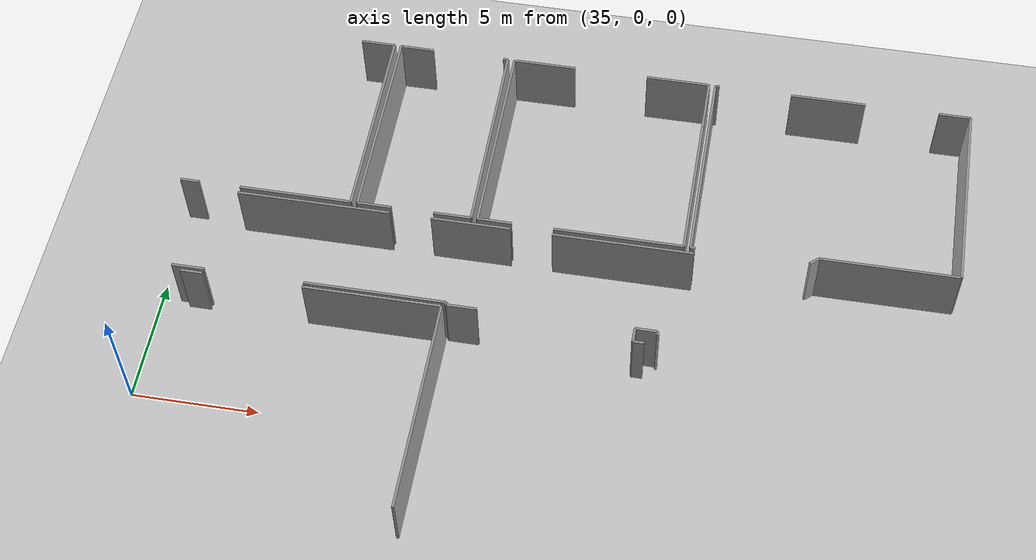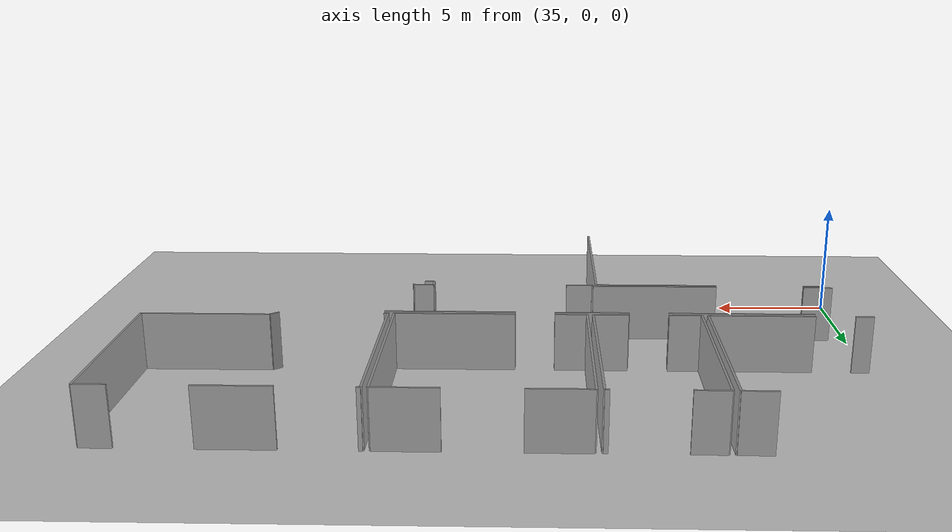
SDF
<sdf version="1.6">
 <world name="default">
  <model name="ground_plane">
   <static>1</static>
   <link name="link">
    <collision name="collision">
     <geometry><plane><normal>0 0 1</normal><size>100 100</size></plane></geometry>
     <surface><friction><ode><mu>100</mu><mu2>50</mu2></ode></friction></surface>
    </collision>
    <visual name="visual">
     <cast_shadows>0</cast_shadows>
     <geometry><plane><normal>0 0 1</normal><size>100 100</size></plane></geometry>
     <material>
      <script><uri>file://media/materials/scripts/gazebo.material</uri><name>Gazebo/Grey</name></script>
     </material>
    </visual>
   </link>
  </model>
  <model name="50041173">
   <static>1</static>
   <link name="Wall_46">
    <collision name="Wall_46_Collision">
     <geometry><box><size>0.864454543147 0.1 2.5</size></box></geometry>
     <pose>0.432227271573 0 1.25 0 0 0</pose>
    </collision>
    <visual name="Wall_46_Visual">
     <pose>0.432227271573 0 1.25 0 0 0</pose>
     <geometry><box><size>0.864454543147 0.1 2.5</size></box></geometry>
     <material>
      <script><uri>file://media/materials/scripts/gazebo.material</uri><name>Gazebo/Grey</name></script>
      <ambient>1 1 1 1</ambient>
     </material>
    </visual>
    <pose>120.225443652 -12.2639569423 0 0 0 3.14159265359</pose>
   </link>
   <link name="Wall_47">
    <collision name="Wall_47_Collision">
     <geometry><box><size>5.55688136282 0.1 2.5</size></box></geometry>
     <pose>2.77844068141 0 1.25 0 0 0</pose>
    </collision>
    <visual name="Wall_47_Visual">
     <pose>2.77844068141 0 1.25 0 0 0</pose>
     <geometry><box><size>5.55688136282 0.1 2.5</size></box></geometry>
     <material>
      <script><uri>file://media/materials/scripts/gazebo.material</uri><name>Gazebo/Grey</name></script>
      <ambient>1 1 1 1</ambient>
     </material>
    </visual>
    <pose>112.128005281 -12.2639569423 0 0 0 3.14159265359</pose>
   </link>
   <link name="Wall_48">
    <collision name="Wall_48_Collision">
     <geometry><box><size>1.29122343802 0.1 2.5</size></box></geometry>
     <pose>0.645611719008 0 1.25 0 0 0</pose>
    </collision>
    <visual name="Wall_48_Visual">
     <pose>0.645611719008 0 1.25 0 0 0</pose>
     <geometry><box><size>1.29122343802 0.1 2.5</size></box></geometry>
     <material>
      <script><uri>file://media/materials/scripts/gazebo.material</uri><name>Gazebo/Grey</name></script>
      <ambient>1 1 1 1</ambient>
     </material>
    </visual>
    <pose>102.657087004 -12.2639569423 0 0 0 3.14159265359</pose>
   </link>
   <link name="Wall_62">
    <collision name="Wall_62_Collision">
     <geometry><box><size>6.13343826957 0.1 2.5</size></box></geometry>
     <pose>3.06671913478 0 1.25 0 0 0</pose>
    </collision>
    <visual name="Wall_62_Visual">
     <pose>3.06671913478 0 1.25 0 0 0</pose>
     <geometry><box><size>6.13343826957 0.1 2.5</size></box></geometry>
     <material>
      <script><uri>file://media/materials/scripts/gazebo.material</uri><name>Gazebo/Grey</name></script>
      <ambient>1 1 1 1</ambient>
     </material>
    </visual>
    <pose>102.981289192 -8.49577293153 0 0 0 0.0</pose>
   </link>
   <link name="Wall_63">
    <collision name="Wall_63_Collision">
     <geometry><box><size>3.15646500292 0.1 2.5</size></box></geometry>
     <pose>1.57823250146 0 1.25 0 0 0</pose>
    </collision>
    <visual name="Wall_63_Visual">
     <pose>1.57823250146 0 1.25 0 0 0</pose>
     <geometry><box><size>3.15646500292 0.1 2.5</size></box></geometry>
     <material>
      <script><uri>file://media/materials/scripts/gazebo.material</uri><name>Gazebo/Grey</name></script>
      <ambient>1 1 1 1</ambient>
     </material>
    </visual>
    <pose>110.765188251 -8.49577293153 0 0 0 0.0</pose>
   </link>
   <link name="Wall_64">
    <collision name="Wall_64_Collision">
     <geometry><box><size>5.55992789865 0.1 2.5</size></box></geometry>
     <pose>2.77996394933 0 1.25 0 0 0</pose>
    </collision>
    <visual name="Wall_64_Visual">
     <pose>2.77996394933 0 1.25 0 0 0</pose>
     <geometry><box><size>5.55992789865 0.1 2.5</size></box></geometry>
     <material>
      <script><uri>file://media/materials/scripts/gazebo.material</uri><name>Gazebo/Grey</name></script>
      <ambient>1 1 1 1</ambient>
     </material>
    </visual>
    <pose>115.566782604 -8.49577293153 0 0 0 0.0</pose>
   </link>
   <link name="Wall_65">
    <collision name="Wall_65_Collision">
     <geometry><box><size>0.159964336797 0.1 2.5</size></box></geometry>
     <pose>0.0799821683984 0 1.25 0 0 0</pose>
    </collision>
    <visual name="Wall_65_Visual">
     <pose>0.0799821683984 0 1.25 0 0 0</pose>
     <geometry><box><size>0.159964336797 0.1 2.5</size></box></geometry>
     <material>
      <script><uri>file://media/materials/scripts/gazebo.material</uri><name>Gazebo/Grey</name></script>
      <ambient>1 1 1 1</ambient>
     </material>
    </visual>
    <pose>120.25463962 -12.4212343548 0 0 0 1.75434063246</pose>
   </link>
   <link name="Wall_102">
    <collision name="Wall_102_Collision">
     <geometry><box><size>4.48411993196 0.1 2.5</size></box></geometry>
     <pose>2.24205996598 0 1.25 0 0 0</pose>
    </collision>
    <visual name="Wall_102_Visual">
     <pose>2.24205996598 0 1.25 0 0 0</pose>
     <geometry><box><size>4.48411993196 0.1 2.5</size></box></geometry>
     <material>
      <script><uri>file://media/materials/scripts/gazebo.material</uri><name>Gazebo/Grey</name></script>
      <ambient>1 1 1 1</ambient>
     </material>
    </visual>
    <pose>107.485973241 -8.22666226611 0 0 0 3.14159265359</pose>
   </link>
   <link name="Wall_103">
    <collision name="Wall_103_Collision">
     <geometry><box><size>0.767853969382 0.1 2.5</size></box></geometry>
     <pose>0.383926984691 0 1.25 0 0 0</pose>
    </collision>
    <visual name="Wall_103_Visual">
     <pose>0.383926984691 0 1.25 0 0 0</pose>
     <geometry><box><size>0.767853969382 0.1 2.5</size></box></geometry>
     <material>
      <script><uri>file://media/materials/scripts/gazebo.material</uri><name>Gazebo/Grey</name></script>
      <ambient>1 1 1 1</ambient>
     </material>
    </visual>
    <pose>101.340856584 -8.22666226611 0 0 0 3.14159265359</pose>
   </link>
   <link name="Wall_106">
    <collision name="Wall_106_Collision">
     <geometry><box><size>1.38211175709 0.1 2.5</size></box></geometry>
     <pose>0.691055878545 0 1.25 0 0 0</pose>
    </collision>
    <visual name="Wall_106_Visual">
     <pose>0.691055878545 0 1.25 0 0 0</pose>
     <geometry><box><size>1.38211175709 0.1 2.5</size></box></geometry>
     <material>
      <script><uri>file://media/materials/scripts/gazebo.material</uri><name>Gazebo/Grey</name></script>
      <ambient>1 1 1 1</ambient>
     </material>
    </visual>
    <pose>106.086216964 -0.0 0 0 0 0.0</pose>
   </link>
   <link name="Wall_107">
    <collision name="Wall_107_Collision">
     <geometry><box><size>8.22668118805 0.1 2.5</size></box></geometry>
     <pose>4.11334059402 0 1.25 0 0 0</pose>
    </collision>
    <visual name="Wall_107_Visual">
     <pose>4.11334059402 0 1.25 0 0 0</pose>
     <geometry><box><size>8.22668118805 0.1 2.5</size></box></geometry>
     <material>
      <script><uri>file://media/materials/scripts/gazebo.material</uri><name>Gazebo/Grey</name></script>
      <ambient>1 1 1 1</ambient>
     </material>
    </visual>
    <pose>107.468328721 -0.0 0 0 0 -1.56865153315</pose>
   </link>
   <link name="Wall_108">
    <collision name="Wall_108_Collision">
     <geometry><box><size>1.49039071822 0.1 2.5</size></box></geometry>
     <pose>0.74519535911 0 1.25 0 0 0</pose>
    </collision>
    <visual name="Wall_108_Visual">
     <pose>0.74519535911 0 1.25 0 0 0</pose>
     <geometry><box><size>1.49039071822 0.1 2.5</size></box></geometry>
     <material>
      <script><uri>file://media/materials/scripts/gazebo.material</uri><name>Gazebo/Grey</name></script>
      <ambient>1 1 1 1</ambient>
     </material>
    </visual>
    <pose>112.304450481 -8.22780471705 0 0 0 3.14159265359</pose>
   </link>
   <link name="Wall_109">
    <collision name="Wall_109_Collision">
     <geometry><box><size>1.36738683389 0.1 2.5</size></box></geometry>
     <pose>0.683693416944 0 1.25 0 0 0</pose>
    </collision>
    <visual name="Wall_109_Visual">
     <pose>0.683693416944 0 1.25 0 0 0</pose>
     <geometry><box><size>1.36738683389 0.1 2.5</size></box></geometry>
     <material>
      <script><uri>file://media/materials/scripts/gazebo.material</uri><name>Gazebo/Grey</name></script>
      <ambient>1 1 1 1</ambient>
     </material>
    </visual>
    <pose>109.118281754 -8.22780471705 0 0 0 3.14159265359</pose>
   </link>
   <link name="Wall_110">
    <collision name="Wall_110_Collision">
     <geometry><box><size>8.21663408566 0.1 2.5</size></box></geometry>
     <pose>4.10831704283 0 1.25 0 0 0</pose>
    </collision>
    <visual name="Wall_110_Visual">
     <pose>4.10831704283 0 1.25 0 0 0</pose>
     <geometry><box><size>8.21663408566 0.1 2.5</size></box></geometry>
     <material>
      <script><uri>file://media/materials/scripts/gazebo.material</uri><name>Gazebo/Grey</name></script>
      <ambient>1 1 1 1</ambient>
     </material>
    </visual>
    <pose>107.75089492 -8.22780471705 0 0 0 1.57079632679</pose>
   </link>
   <link name="Wall_111">
    <collision name="Wall_111_Collision">
     <geometry><box><size>1.38109624514 0.1 2.5</size></box></geometry>
     <pose>0.690548122572 0 1.25 0 0 0</pose>
    </collision>
    <visual name="Wall_111_Visual">
     <pose>0.690548122572 0 1.25 0 0 0</pose>
     <geometry><box><size>1.38109624514 0.1 2.5</size></box></geometry>
     <material>
      <script><uri>file://media/materials/scripts/gazebo.material</uri><name>Gazebo/Grey</name></script>
      <ambient>1 1 1 1</ambient>
     </material>
    </visual>
    <pose>107.75089492 -0.0111706313946 0 0 0 0.0</pose>
   </link>
   <link name="Wall_112">
    <collision name="Wall_112_Collision">
     <geometry><box><size>0.186600319886 0.1 2.5</size></box></geometry>
     <pose>0.0933001599431 0 1.25 0 0 0</pose>
    </collision>
    <visual name="Wall_112_Visual">
     <pose>0.0933001599431 0 1.25 0 0 0</pose>
     <geometry><box><size>0.186600319886 0.1 2.5</size></box></geometry>
     <material>
      <script><uri>file://media/materials/scripts/gazebo.material</uri><name>Gazebo/Grey</name></script>
      <ambient>1 1 1 1</ambient>
     </material>
    </visual>
    <pose>112.086115413 -0.0111706313946 0 0 0 0.0</pose>
   </link>
   <link name="Wall_113">
    <collision name="Wall_113_Collision">
     <geometry><box><size>8.2166953693 0.1 2.5</size></box></geometry>
     <pose>4.10834768465 0 1.25 0 0 0</pose>
    </collision>
    <visual name="Wall_113_Visual">
     <pose>4.10834768465 0 1.25 0 0 0</pose>
     <geometry><box><size>8.2166953693 0.1 2.5</size></box></geometry>
     <material>
      <script><uri>file://media/materials/scripts/gazebo.material</uri><name>Gazebo/Grey</name></script>
      <ambient>1 1 1 1</ambient>
     </material>
    </visual>
    <pose>112.272715733 -0.0111706313946 0 0 0 -1.56693408951</pose>
   </link>
   <link name="Wall_114">
    <collision name="Wall_114_Collision">
     <geometry><box><size>5.11183325294 0.1 2.5</size></box></geometry>
     <pose>2.55591662647 0 1.25 0 0 0</pose>
    </collision>
    <visual name="Wall_114_Visual">
     <pose>2.55591662647 0 1.25 0 0 0</pose>
     <geometry><box><size>5.11183325294 0.1 2.5</size></box></geometry>
     <material>
      <script><uri>file://media/materials/scripts/gazebo.material</uri><name>Gazebo/Grey</name></script>
      <ambient>1 1 1 1</ambient>
     </material>
    </visual>
    <pose>120.690040367 -8.22590063216 0 0 0 3.14159265359</pose>
   </link>
   <link name="Wall_115">
    <collision name="Wall_115_Collision">
     <geometry><box><size>1.36078600625 0.1 2.5</size></box></geometry>
     <pose>0.680393003123 0 1.25 0 0 0</pose>
    </collision>
    <visual name="Wall_115_Visual">
     <pose>0.680393003123 0 1.25 0 0 0</pose>
     <geometry><box><size>1.36078600625 0.1 2.5</size></box></geometry>
     <material>
      <script><uri>file://media/materials/scripts/gazebo.material</uri><name>Gazebo/Grey</name></script>
      <ambient>1 1 1 1</ambient>
     </material>
    </visual>
    <pose>113.919114474 -8.22590063216 0 0 0 3.14159265359</pose>
   </link>
   <link name="Wall_116">
    <collision name="Wall_116_Collision">
     <geometry><box><size>8.21231815989 0.1 2.5</size></box></geometry>
     <pose>4.10615907995 0 1.25 0 0 0</pose>
    </collision>
    <visual name="Wall_116_Visual">
     <pose>4.10615907995 0 1.25 0 0 0</pose>
     <geometry><box><size>8.21231815989 0.1 2.5</size></box></geometry>
     <material>
      <script><uri>file://media/materials/scripts/gazebo.material</uri><name>Gazebo/Grey</name></script>
      <ambient>1 1 1 1</ambient>
     </material>
    </visual>
    <pose>112.558328467 -8.22590063216 0 0 0 1.57079632679</pose>
   </link>
   <link name="Wall_117">
    <collision name="Wall_117_Collision">
     <geometry><box><size>2.5590901013 0.1 2.5</size></box></geometry>
     <pose>1.27954505065 0 1.25 0 0 0</pose>
    </collision>
    <visual name="Wall_117_Visual">
     <pose>1.27954505065 0 1.25 0 0 0</pose>
     <geometry><box><size>2.5590901013 0.1 2.5</size></box></geometry>
     <material>
      <script><uri>file://media/materials/scripts/gazebo.material</uri><name>Gazebo/Grey</name></script>
      <ambient>1 1 1 1</ambient>
     </material>
    </visual>
    <pose>112.558328467 -0.0135824722638 0 0 0 0.0</pose>
   </link>
   <link name="Wall_118">
    <collision name="Wall_118_Collision">
     <geometry><box><size>2.57432278047 0.1 2.5</size></box></geometry>
     <pose>1.28716139024 0 1.25 0 0 0</pose>
    </collision>
    <visual name="Wall_118_Visual">
     <pose>1.28716139024 0 1.25 0 0 0</pose>
     <geometry><box><size>2.57432278047 0.1 2.5</size></box></geometry>
     <material>
      <script><uri>file://media/materials/scripts/gazebo.material</uri><name>Gazebo/Grey</name></script>
      <ambient>1 1 1 1</ambient>
     </material>
    </visual>
    <pose>118.109370636 -0.0135824722638 0 0 0 0.0</pose>
   </link>
   <link name="Wall_119">
    <collision name="Wall_119_Collision">
     <geometry><box><size>8.21232061254 0.1 2.5</size></box></geometry>
     <pose>4.10616030627 0 1.25 0 0 0</pose>
    </collision>
    <visual name="Wall_119_Visual">
     <pose>4.10616030627 0 1.25 0 0 0</pose>
     <geometry><box><size>8.21232061254 0.1 2.5</size></box></geometry>
     <material>
      <script><uri>file://media/materials/scripts/gazebo.material</uri><name>Gazebo/Grey</name></script>
      <ambient>1 1 1 1</ambient>
     </material>
    </visual>
    <pose>120.683693417 -0.0135824722638 0 0 0 -1.5700234697</pose>
   </link>
   <link name="Wall_120">
    <collision name="Wall_120_Collision">
     <geometry><box><size>5.46218487395 0.1 2.5</size></box></geometry>
     <pose>2.73109243697 0 1.25 0 0 0</pose>
    </collision>
    <visual name="Wall_120_Visual">
     <pose>2.73109243697 0 1.25 0 0 0</pose>
     <geometry><box><size>5.46218487395 0.1 2.5</size></box></geometry>
     <material>
      <script><uri>file://media/materials/scripts/gazebo.material</uri><name>Gazebo/Grey</name></script>
      <ambient>1 1 1 1</ambient>
     </material>
    </visual>
    <pose>131.374495418 -7.95463200386 0 0 0 3.14159265359</pose>
   </link>
   <link name="Wall_121">
    <collision name="Wall_121_Collision">
     <geometry><box><size>0.438692491849 0.1 2.5</size></box></geometry>
     <pose>0.219346245925 0 1.25 0 0 0</pose>
    </collision>
    <visual name="Wall_121_Visual">
     <pose>0.219346245925 0 1.25 0 0 0</pose>
     <geometry><box><size>0.438692491849 0.1 2.5</size></box></geometry>
     <material>
      <script><uri>file://media/materials/scripts/gazebo.material</uri><name>Gazebo/Grey</name></script>
      <ambient>1 1 1 1</ambient>
     </material>
    </visual>
    <pose>125.912310544 -7.95463200386 0 0 0 -2.43566551495</pose>
   </link>
   <link name="Wall_122">
    <collision name="Wall_122_Collision">
     <geometry><box><size>0.182792150093 0.1 2.5</size></box></geometry>
     <pose>0.0913960750463 0 1.25 0 0 0</pose>
    </collision>
    <visual name="Wall_122_Visual">
     <pose>0.0913960750463 0 1.25 0 0 0</pose>
     <geometry><box><size>0.182792150093 0.1 2.5</size></box></geometry>
     <material>
      <script><uri>file://media/materials/scripts/gazebo.material</uri><name>Gazebo/Grey</name></script>
      <ambient>1 1 1 1</ambient>
     </material>
    </visual>
    <pose>121.131788063 -8.23922922643 0 0 0 3.14159265359</pose>
   </link>
   <link name="Wall_123">
    <collision name="Wall_123_Collision">
     <geometry><box><size>8.21841123156 0.1 2.5</size></box></geometry>
     <pose>4.10920561578 0 1.25 0 0 0</pose>
    </collision>
    <visual name="Wall_123_Visual">
     <pose>4.10920561578 0 1.25 0 0 0</pose>
     <geometry><box><size>8.21841123156 0.1 2.5</size></box></geometry>
     <material>
      <script><uri>file://media/materials/scripts/gazebo.material</uri><name>Gazebo/Grey</name></script>
      <ambient>1 1 1 1</ambient>
     </material>
    </visual>
    <pose>120.948995913 -8.23922922643 0 0 0 1.57079632679</pose>
   </link>
   <link name="Wall_124">
    <collision name="Wall_124_Collision">
     <geometry><box><size>0.166290080987 0.1 2.5</size></box></geometry>
     <pose>0.0831450404935 0 1.25 0 0 0</pose>
    </collision>
    <visual name="Wall_124_Visual">
     <pose>0.0831450404935 0 1.25 0 0 0</pose>
     <geometry><box><size>0.166290080987 0.1 2.5</size></box></geometry>
     <material>
      <script><uri>file://media/materials/scripts/gazebo.material</uri><name>Gazebo/Grey</name></script>
      <ambient>1 1 1 1</ambient>
     </material>
    </visual>
    <pose>120.948995913 -0.0208179948717 0 0 0 0.0</pose>
   </link>
   <link name="Wall_125">
    <collision name="Wall_125_Collision">
     <geometry><box><size>3.0351113255 0.1 2.5</size></box></geometry>
     <pose>1.51755566275 0 1.25 0 0 0</pose>
    </collision>
    <visual name="Wall_125_Visual">
     <pose>1.51755566275 0 1.25 0 0 0</pose>
     <geometry><box><size>3.0351113255 0.1 2.5</size></box></geometry>
     <material>
      <script><uri>file://media/materials/scripts/gazebo.material</uri><name>Gazebo/Grey</name></script>
      <ambient>1 1 1 1</ambient>
     </material>
    </visual>
    <pose>124.072964533 -0.0208179948717 0 0 0 0.0</pose>
   </link>
   <link name="Wall_126">
    <collision name="Wall_126_Collision">
     <geometry><box><size>1.27446749092 0.1 2.5</size></box></geometry>
     <pose>0.637233745462 0 1.25 0 0 0</pose>
    </collision>
    <visual name="Wall_126_Visual">
     <pose>0.637233745462 0 1.25 0 0 0</pose>
     <geometry><box><size>1.27446749092 0.1 2.5</size></box></geometry>
     <material>
      <script><uri>file://media/materials/scripts/gazebo.material</uri><name>Gazebo/Grey</name></script>
      <ambient>1 1 1 1</ambient>
     </material>
    </visual>
    <pose>130.096219757 -0.0208179948717 0 0 0 0.0</pose>
   </link>
   <link name="Wall_127">
    <collision name="Wall_127_Collision">
     <geometry><box><size>7.93381492293 0.1 2.5</size></box></geometry>
     <pose>3.96690746147 0 1.25 0 0 0</pose>
    </collision>
    <visual name="Wall_127_Visual">
     <pose>3.96690746147 0 1.25 0 0 0</pose>
     <geometry><box><size>7.93381492293 0.1 2.5</size></box></geometry>
     <material>
      <script><uri>file://media/materials/scripts/gazebo.material</uri><name>Gazebo/Grey</name></script>
      <ambient>1 1 1 1</ambient>
     </material>
    </visual>
    <pose>131.370687248 -0.0208179948717 0 0 0 -1.57031633451</pose>
   </link>
   <link name="Wall_358">
    <collision name="Wall_358_Collision">
     <geometry><box><size>0.877275381452 0.1 2.5</size></box></geometry>
     <pose>0.438637690726 0 1.25 0 0 0</pose>
    </collision>
    <visual name="Wall_358_Visual">
     <pose>0.438637690726 0 1.25 0 0 0</pose>
     <geometry><box><size>0.877275381452 0.1 2.5</size></box></geometry>
     <material>
      <script><uri>file://media/materials/scripts/gazebo.material</uri><name>Gazebo/Grey</name></script>
      <ambient>1 1 1 1</ambient>
     </material>
    </visual>
    <pose>101.757978116 -12.4585544187 0 0 0 0.0</pose>
   </link>
   <link name="Wall_359">
    <collision name="Wall_359_Collision">
     <geometry><box><size>5.42879991876 0.1 2.5</size></box></geometry>
     <pose>2.71439995938 0 1.25 0 0 0</pose>
    </collision>
    <visual name="Wall_359_Visual">
     <pose>2.71439995938 0 1.25 0 0 0</pose>
     <geometry><box><size>5.42879991876 0.1 2.5</size></box></geometry>
     <material>
      <script><uri>file://media/materials/scripts/gazebo.material</uri><name>Gazebo/Grey</name></script>
      <ambient>1 1 1 1</ambient>
     </material>
    </visual>
    <pose>106.55449491 -12.4585544187 0 0 0 0.0</pose>
   </link>
   <link name="Wall_360">
    <collision name="Wall_360_Collision">
     <geometry><box><size>8.60774444894 0.1 2.5</size></box></geometry>
     <pose>4.30387222447 0 1.25 0 0 0</pose>
    </collision>
    <visual name="Wall_360_Visual">
     <pose>4.30387222447 0 1.25 0 0 0</pose>
     <geometry><box><size>8.60774444894 0.1 2.5</size></box></geometry>
     <material>
      <script><uri>file://media/materials/scripts/gazebo.material</uri><name>Gazebo/Grey</name></script>
      <ambient>1 1 1 1</ambient>
     </material>
    </visual>
    <pose>111.983294829 -12.4585544187 0 0 0 -1.57241850499</pose>
   </link>
   <link name="Wall_369">
    <collision name="Wall_369_Collision">
     <geometry><box><size>1.1919571454 0.1 2.5</size></box></geometry>
     <pose>0.595978572698 0 1.25 0 0 0</pose>
    </collision>
    <visual name="Wall_369_Visual">
     <pose>0.595978572698 0 1.25 0 0 0</pose>
     <geometry><box><size>1.1919571454 0.1 2.5</size></box></geometry>
     <material>
      <script><uri>file://media/materials/scripts/gazebo.material</uri><name>Gazebo/Grey</name></script>
      <ambient>1 1 1 1</ambient>
     </material>
    </visual>
    <pose>113.332656325 -12.3707126355 0 0 0 3.14159265359</pose>
   </link>
   <link name="Wall_370">
    <collision name="Wall_370_Collision">
     <geometry><box><size>0.0917768920257 0.1 2.5</size></box></geometry>
     <pose>0.0458884460128 0 1.25 0 0 0</pose>
    </collision>
    <visual name="Wall_370_Visual">
     <pose>0.0458884460128 0 1.25 0 0 0</pose>
     <geometry><box><size>0.0917768920257 0.1 2.5</size></box></geometry>
     <material>
      <script><uri>file://media/materials/scripts/gazebo.material</uri><name>Gazebo/Grey</name></script>
      <ambient>1 1 1 1</ambient>
     </material>
    </visual>
    <pose>112.14069918 -12.3707126355 0 0 0 1.57079632679</pose>
   </link>
   <link name="Wall_371">
    <collision name="Wall_371_Collision">
     <geometry><box><size>0.569956079108 0.1 2.5</size></box></geometry>
     <pose>0.284978039554 0 1.25 0 0 0</pose>
    </collision>
    <visual name="Wall_371_Visual">
     <pose>0.284978039554 0 1.25 0 0 0</pose>
     <geometry><box><size>0.569956079108 0.1 2.5</size></box></geometry>
     <material>
      <script><uri>file://media/materials/scripts/gazebo.material</uri><name>Gazebo/Grey</name></script>
      <ambient>1 1 1 1</ambient>
     </material>
    </visual>
    <pose>119.363527888 -12.2789357435 0 0 0 -1.57079632679</pose>
   </link>
   <link name="Wall_372">
    <collision name="Wall_372_Collision">
     <geometry><box><size>0.430323186676 0.1 2.5</size></box></geometry>
     <pose>0.215161593338 0 1.25 0 0 0</pose>
    </collision>
    <visual name="Wall_372_Visual">
     <pose>0.215161593338 0 1.25 0 0 0</pose>
     <geometry><box><size>0.430323186676 0.1 2.5</size></box></geometry>
     <material>
      <script><uri>file://media/materials/scripts/gazebo.material</uri><name>Gazebo/Grey</name></script>
      <ambient>1 1 1 1</ambient>
     </material>
    </visual>
    <pose>119.363527888 -12.8488918226 0 0 0 0.0</pose>
   </link>
   <pose>-65.65 16.778664094 0 0 0 0</pose>
  </model>
 </world>
</sdf>
